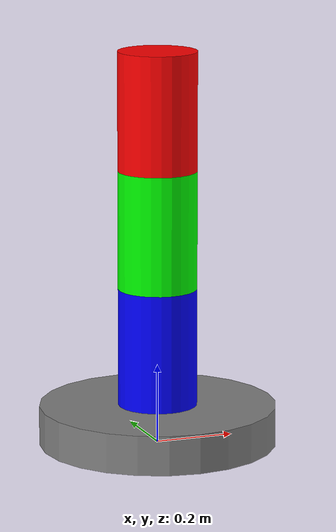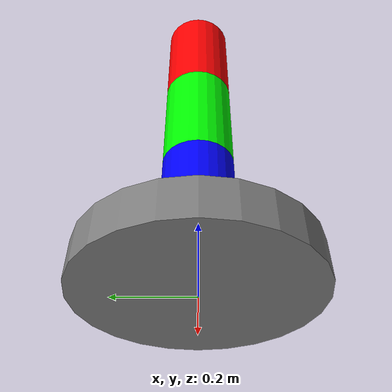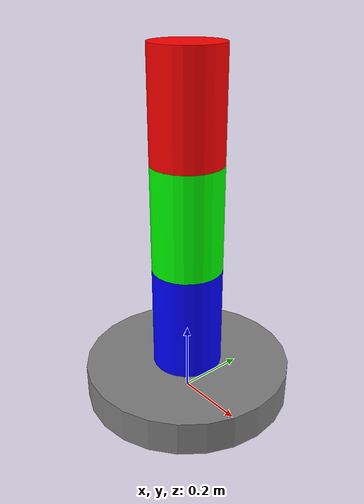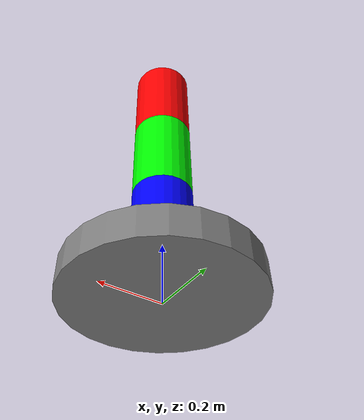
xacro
<?xml version="1.0"?>
<robot name="robot_arm1" xmlns:xacro="http://ros.org/wiki/xacro">

  <!-- base_link -->
  <link name="base_link">
    <visual>
      <geometry>
        <cylinder length="0.1" radius="0.3"/>
      </geometry>
      <origin xyz="0 0 0.05" rpy="0 0 0"/>
      <material name="gray">
        <color rgba="0.5 0.5 0.5 1"/>
      </material>
    </visual>
  </link>

  <!-- link_1 -->
  <link name="link_1">
    <visual>
      <geometry>
        <cylinder length="0.3" radius="0.1"/>
      </geometry>
      <origin xyz="0 0 0.15" rpy="0 0 0"/>
      <material name="blue">
        <color rgba="0 0 1 1"/>
      </material>
    </visual>
  </link>

  <joint name="joint_1" type="revolute">
    <parent link="base_link"/>
    <child link="link_1"/>
    <origin xyz="0 0 0.1" rpy="0 0 0"/>
    <axis xyz="0 0 1"/>
    <limit lower="-3.14" upper="3.14" effort="1.0" velocity="1.0"/>
  </joint>

  <!-- link_2 -->
  <link name="link_2">
    <visual>
      <geometry>
        <cylinder length="0.3" radius="0.1"/>
      </geometry>
      <origin xyz="0 0 0.15" rpy="0 0 0"/>
      <material name="green">
        <color rgba="0 1 0 1"/>
      </material>
    </visual>
  </link>

  <joint name="joint_2" type="revolute">
    <parent link="link_1"/>
    <child link="link_2"/>
    <origin xyz="0 0 0.3" rpy="0 0 0"/>
    <axis xyz="0 0 1"/>
    <limit lower="-3.14" upper="3.14" effort="1.0" velocity="1.0"/>
  </joint>

  <!-- link_3 -->
  <link name="link_3">
    <visual>
      <geometry>
        <cylinder length="0.3" radius="0.1"/>
      </geometry>
      <origin xyz="0 0 0.15" rpy="0 0 0"/>
      <material name="red">
        <color rgba="1 0 0 1"/>
      </material>
    </visual>
  </link>

  <joint name="joint_3" type="revolute">
    <parent link="link_2"/>
    <child link="link_3"/>
    <origin xyz="0 0 0.3" rpy="0 0 0"/>
    <axis xyz="0 0 1"/>
    <limit lower="-3.14" upper="3.14" effort="1.0" velocity="1.0"/>
  </joint>

</robot>
